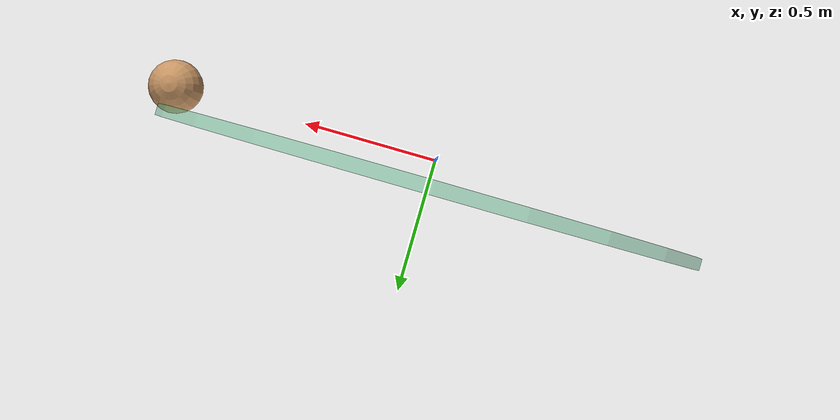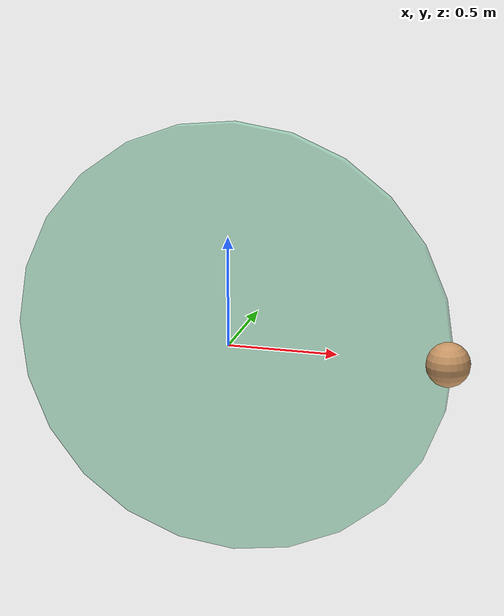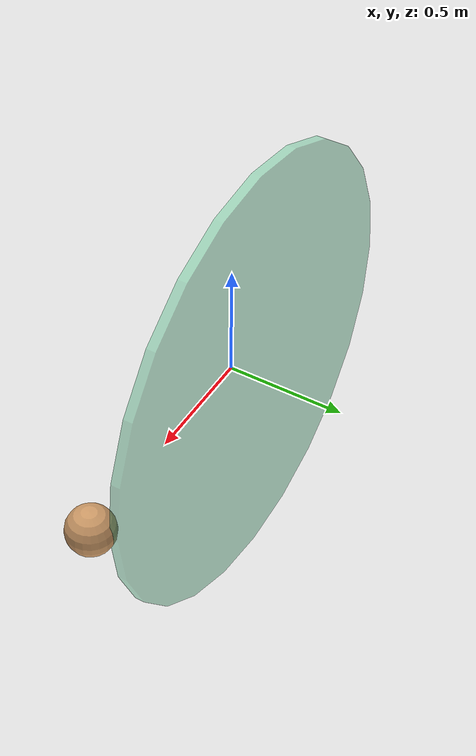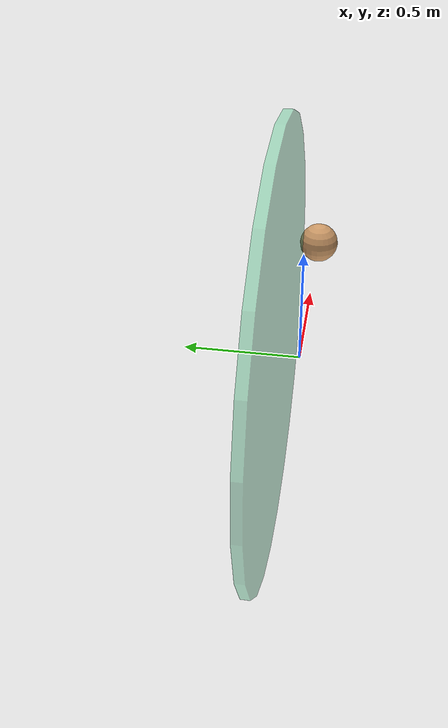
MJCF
<mujoco>
  <option integrator="RK4">
    <flag energy="enable"/>
  </option>

  <default>
    <geom rgba="0.8 0.6 .4 1"/>
    <site rgba="0.4 0.8 .6 .5"/>
  </default>

  <worldbody>
    <site name="decoration" type="cylinder" zaxis="0 -1 0" size="1 .02" pos="0 .1 0"/>
    <body>
      <inertial pos="1 0 0" mass="1" diaginertia="1e-8 1e-8 1e-8"/>
      <joint name="hinge" axis="0 -1 0"/>
      <joint name="slide" type="slide" axis="1 0 0" springref="-.5" stiffness="100" armature="5"/>
      <geom name="query" type="sphere" size=".1" pos="1 0 0"/>
    </body>
  </worldbody>
</mujoco>
